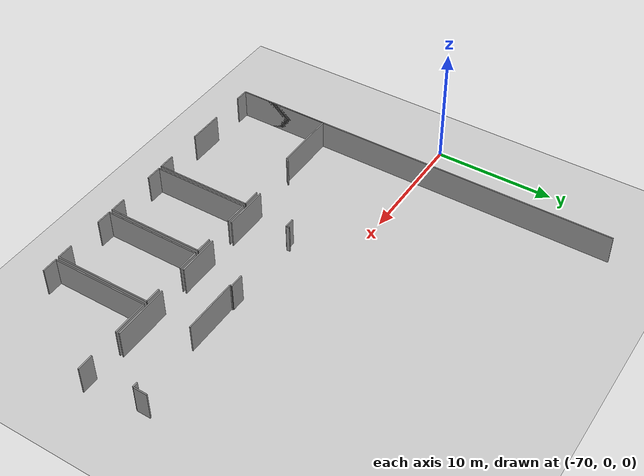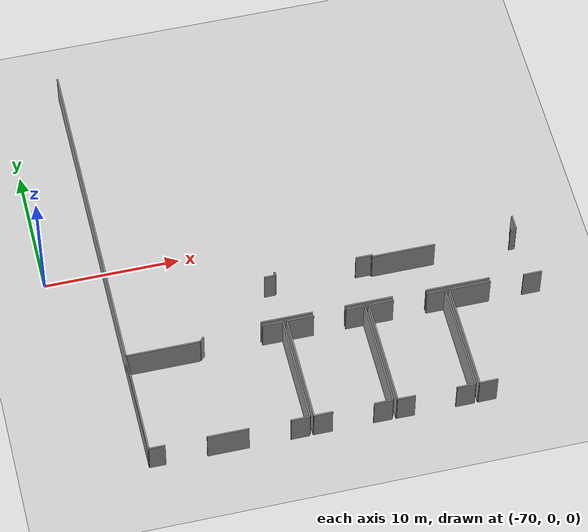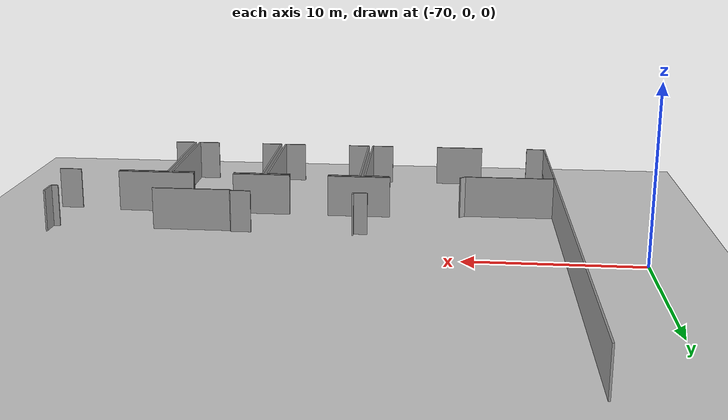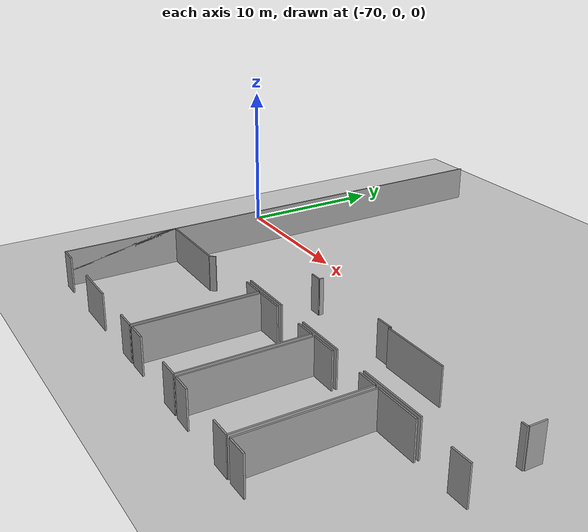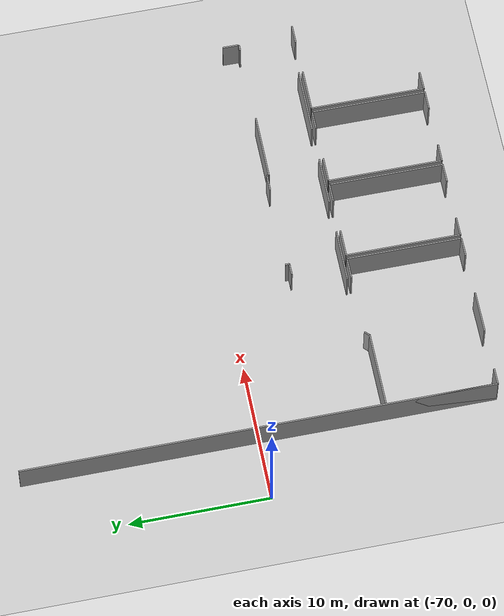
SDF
<sdf version="1.6">
 <world name="default">
  <model name="ground_plane">
   <static>1</static>
   <link name="link">
    <collision name="collision">
     <geometry><plane><normal>0 0 1</normal><size>100 100</size></plane></geometry>
     <surface><friction><ode><mu>100</mu><mu2>50</mu2></ode></friction></surface>
    </collision>
    <visual name="visual">
     <cast_shadows>0</cast_shadows>
     <geometry><plane><normal>0 0 1</normal><size>100 100</size></plane></geometry>
     <material>
      <script><uri>file://media/materials/scripts/gazebo.material</uri><name>Gazebo/Grey</name></script>
     </material>
    </visual>
   </link>
  </model>
  <model name="50041172">
   <static>1</static>
   <link name="Wall_0">
    <collision name="Wall_0_Collision">
     <geometry><box><size>7.88504652123 0.1 2.5</size></box></geometry>
     <pose>3.94252326061 0 1.25 0 0 0</pose>
    </collision>
    <visual name="Wall_0_Visual">
     <pose>3.94252326061 0 1.25 0 0 0</pose>
     <geometry><box><size>7.88504652123 0.1 2.5</size></box></geometry>
     <material>
      <script><uri>file://media/materials/scripts/gazebo.material</uri><name>Gazebo/Grey</name></script>
      <ambient>1 1 1 1</ambient>
     </material>
    </visual>
    <pose>0.0 -33.542027881 0 0 0 1.57079632679</pose>
   </link>
   <link name="Wall_1">
    <collision name="Wall_1_Collision">
     <geometry><box><size>5.38922231749 0.1 2.5</size></box></geometry>
     <pose>2.69461115874 0 1.25 0 0 0</pose>
    </collision>
    <visual name="Wall_1_Visual">
     <pose>2.69461115874 0 1.25 0 0 0</pose>
     <geometry><box><size>5.38922231749 0.1 2.5</size></box></geometry>
     <material>
      <script><uri>file://media/materials/scripts/gazebo.material</uri><name>Gazebo/Grey</name></script>
      <ambient>1 1 1 1</ambient>
     </material>
    </visual>
    <pose>0.0 -25.6569813598 0 0 0 0.0</pose>
   </link>
   <link name="Wall_2">
    <collision name="Wall_2_Collision">
     <geometry><box><size>0.439427206756 0.1 2.5</size></box></geometry>
     <pose>0.219713603378 0 1.25 0 0 0</pose>
    </collision>
    <visual name="Wall_2_Visual">
     <pose>0.219713603378 0 1.25 0 0 0</pose>
     <geometry><box><size>0.439427206756 0.1 2.5</size></box></geometry>
     <material>
      <script><uri>file://media/materials/scripts/gazebo.material</uri><name>Gazebo/Grey</name></script>
      <ambient>1 1 1 1</ambient>
     </material>
    </visual>
    <pose>5.38922231749 -25.6569813598 0 0 0 0.799297513546</pose>
   </link>
   <link name="Wall_3">
    <collision name="Wall_3_Collision">
     <geometry><box><size>1.51370232765 0.1 2.5</size></box></geometry>
     <pose>0.756851163825 0 1.25 0 0 0</pose>
    </collision>
    <visual name="Wall_3_Visual">
     <pose>0.756851163825 0 1.25 0 0 0</pose>
     <geometry><box><size>1.51370232765 0.1 2.5</size></box></geometry>
     <material>
      <script><uri>file://media/materials/scripts/gazebo.material</uri><name>Gazebo/Grey</name></script>
      <ambient>1 1 1 1</ambient>
     </material>
    </visual>
    <pose>10.0130195929 -25.3419707218 0 0 0 0.0</pose>
   </link>
   <link name="Wall_4">
    <collision name="Wall_4_Collision">
     <geometry><box><size>8.20247054714 0.1 2.5</size></box></geometry>
     <pose>4.10123527357 0 1.25 0 0 0</pose>
    </collision>
    <visual name="Wall_4_Visual">
     <pose>4.10123527357 0 1.25 0 0 0</pose>
     <geometry><box><size>8.20247054714 0.1 2.5</size></box></geometry>
     <material>
      <script><uri>file://media/materials/scripts/gazebo.material</uri><name>Gazebo/Grey</name></script>
      <ambient>1 1 1 1</ambient>
     </material>
    </visual>
    <pose>11.5267219205 -25.3419707218 0 0 0 -1.57079632679</pose>
   </link>
   <link name="Wall_5">
    <collision name="Wall_5_Collision">
     <geometry><box><size>1.37499603061 0.1 2.5</size></box></geometry>
     <pose>0.687498015306 0 1.25 0 0 0</pose>
    </collision>
    <visual name="Wall_5_Visual">
     <pose>0.687498015306 0 1.25 0 0 0</pose>
     <geometry><box><size>1.37499603061 0.1 2.5</size></box></geometry>
     <material>
      <script><uri>file://media/materials/scripts/gazebo.material</uri><name>Gazebo/Grey</name></script>
      <ambient>1 1 1 1</ambient>
     </material>
    </visual>
    <pose>11.5267219205 -33.5444412689 0 0 0 3.14159265359</pose>
   </link>
   <link name="Wall_6">
    <collision name="Wall_6_Collision">
     <geometry><box><size>3.01178114382 0.1 2.5</size></box></geometry>
     <pose>1.50589057191 0 1.25 0 0 0</pose>
    </collision>
    <visual name="Wall_6_Visual">
     <pose>1.50589057191 0 1.25 0 0 0</pose>
     <geometry><box><size>3.01178114382 0.1 2.5</size></box></geometry>
     <material>
      <script><uri>file://media/materials/scripts/gazebo.material</uri><name>Gazebo/Grey</name></script>
      <ambient>1 1 1 1</ambient>
     </material>
    </visual>
    <pose>7.15734654346 -33.5444412689 0 0 0 3.14159265359</pose>
   </link>
   <link name="Wall_7">
    <collision name="Wall_7_Collision">
     <geometry><box><size>1.16846332243 0.1 2.5</size></box></geometry>
     <pose>0.584231661216 0 1.25 0 0 0</pose>
    </collision>
    <visual name="Wall_7_Visual">
     <pose>0.584231661216 0 1.25 0 0 0</pose>
     <geometry><box><size>1.16846332243 0.1 2.5</size></box></geometry>
     <material>
      <script><uri>file://media/materials/scripts/gazebo.material</uri><name>Gazebo/Grey</name></script>
      <ambient>1 1 1 1</ambient>
     </material>
    </visual>
    <pose>1.16846083008 -33.5444412689 0 0 0 3.13952721463</pose>
   </link>
   <link name="Wall_8">
    <collision name="Wall_8_Collision">
     <geometry><box><size>8.19789781207 0.1 2.5</size></box></geometry>
     <pose>4.09894890604 0 1.25 0 0 0</pose>
    </collision>
    <visual name="Wall_8_Visual">
     <pose>4.09894890604 0 1.25 0 0 0</pose>
     <geometry><box><size>8.19789781207 0.1 2.5</size></box></geometry>
     <material>
      <script><uri>file://media/materials/scripts/gazebo.material</uri><name>Gazebo/Grey</name></script>
      <ambient>1 1 1 1</ambient>
     </material>
    </visual>
    <pose>11.8021021879 -33.5377091868 0 0 0 1.57079632679</pose>
   </link>
   <link name="Wall_9">
    <collision name="Wall_9_Collision">
     <geometry><box><size>1.98202661078 0.1 2.5</size></box></geometry>
     <pose>0.991013305389 0 1.25 0 0 0</pose>
    </collision>
    <visual name="Wall_9_Visual">
     <pose>0.991013305389 0 1.25 0 0 0</pose>
     <geometry><box><size>1.98202661078 0.1 2.5</size></box></geometry>
     <material>
      <script><uri>file://media/materials/scripts/gazebo.material</uri><name>Gazebo/Grey</name></script>
      <ambient>1 1 1 1</ambient>
     </material>
    </visual>
    <pose>11.8021021879 -25.3398113747 0 0 0 0.0</pose>
   </link>
   <link name="Wall_10">
    <collision name="Wall_10_Collision">
     <geometry><box><size>1.37842558191 0.1 2.5</size></box></geometry>
     <pose>0.689212790956 0 1.25 0 0 0</pose>
    </collision>
    <visual name="Wall_10_Visual">
     <pose>0.689212790956 0 1.25 0 0 0</pose>
     <geometry><box><size>1.37842558191 0.1 2.5</size></box></geometry>
     <material>
      <script><uri>file://media/materials/scripts/gazebo.material</uri><name>Gazebo/Grey</name></script>
      <ambient>1 1 1 1</ambient>
     </material>
    </visual>
    <pose>16.1533136452 -25.3398113747 0 0 0 0.0</pose>
   </link>
   <link name="Wall_11">
    <collision name="Wall_11_Collision">
     <geometry><box><size>8.19637356705 0.1 2.5</size></box></geometry>
     <pose>4.09818678353 0 1.25 0 0 0</pose>
    </collision>
    <visual name="Wall_11_Visual">
     <pose>4.09818678353 0 1.25 0 0 0</pose>
     <geometry><box><size>8.19637356705 0.1 2.5</size></box></geometry>
     <material>
      <script><uri>file://media/materials/scripts/gazebo.material</uri><name>Gazebo/Grey</name></script>
      <ambient>1 1 1 1</ambient>
     </material>
    </visual>
    <pose>17.5317392271 -25.3398113747 0 0 0 -1.57079632679</pose>
   </link>
   <link name="Wall_12">
    <collision name="Wall_12_Collision">
     <geometry><box><size>1.37245562224 0.1 2.5</size></box></geometry>
     <pose>0.686227811121 0 1.25 0 0 0</pose>
    </collision>
    <visual name="Wall_12_Visual">
     <pose>0.686227811121 0 1.25 0 0 0</pose>
     <geometry><box><size>1.37245562224 0.1 2.5</size></box></geometry>
     <material>
      <script><uri>file://media/materials/scripts/gazebo.material</uri><name>Gazebo/Grey</name></script>
      <ambient>1 1 1 1</ambient>
     </material>
    </visual>
    <pose>17.5317392271 -33.5361849417 0 0 0 3.14159265359</pose>
   </link>
   <link name="Wall_13">
    <collision name="Wall_13_Collision">
     <geometry><box><size>1.3633110042 0.1 2.5</size></box></geometry>
     <pose>0.681655502098 0 1.25 0 0 0</pose>
    </collision>
    <visual name="Wall_13_Visual">
     <pose>0.681655502098 0 1.25 0 0 0</pose>
     <geometry><box><size>1.3633110042 0.1 2.5</size></box></geometry>
     <material>
      <script><uri>file://media/materials/scripts/gazebo.material</uri><name>Gazebo/Grey</name></script>
      <ambient>1 1 1 1</ambient>
     </material>
    </visual>
    <pose>13.16541234 -33.5361849417 0 0 0 -3.14047460691</pose>
   </link>
   <link name="Wall_14">
    <collision name="Wall_14_Collision">
     <geometry><box><size>8.20755136388 0.1 2.5</size></box></geometry>
     <pose>4.10377568194 0 1.25 0 0 0</pose>
    </collision>
    <visual name="Wall_14_Visual">
     <pose>4.10377568194 0 1.25 0 0 0</pose>
     <geometry><box><size>8.20755136388 0.1 2.5</size></box></geometry>
     <material>
      <script><uri>file://media/materials/scripts/gazebo.material</uri><name>Gazebo/Grey</name></script>
      <ambient>1 1 1 1</ambient>
     </material>
    </visual>
    <pose>17.8353180274 -33.5429170239 0 0 0 1.57079632679</pose>
   </link>
   <link name="Wall_15">
    <collision name="Wall_15_Collision">
     <geometry><box><size>1.82845892477 0.1 2.5</size></box></geometry>
     <pose>0.914229462386 0 1.25 0 0 0</pose>
    </collision>
    <visual name="Wall_15_Visual">
     <pose>0.914229462386 0 1.25 0 0 0</pose>
     <geometry><box><size>1.82845892477 0.1 2.5</size></box></geometry>
     <material>
      <script><uri>file://media/materials/scripts/gazebo.material</uri><name>Gazebo/Grey</name></script>
      <ambient>1 1 1 1</ambient>
     </material>
    </visual>
    <pose>17.8353180274 -25.33536566 0 0 0 0.0</pose>
   </link>
   <link name="Wall_16">
    <collision name="Wall_16_Collision">
     <geometry><box><size>1.36851798927 0.1 2.5</size></box></geometry>
     <pose>0.684258994633 0 1.25 0 0 0</pose>
    </collision>
    <visual name="Wall_16_Visual">
     <pose>0.684258994633 0 1.25 0 0 0</pose>
     <geometry><box><size>1.36851798927 0.1 2.5</size></box></geometry>
     <material>
      <script><uri>file://media/materials/scripts/gazebo.material</uri><name>Gazebo/Grey</name></script>
      <ambient>1 1 1 1</ambient>
     </material>
    </visual>
    <pose>22.1465180528 -25.33536566 0 0 0 0.0</pose>
   </link>
   <link name="Wall_17">
    <collision name="Wall_17_Collision">
     <geometry><box><size>8.22571528373 0.1 2.5</size></box></geometry>
     <pose>4.11285764187 0 1.25 0 0 0</pose>
    </collision>
    <visual name="Wall_17_Visual">
     <pose>4.11285764187 0 1.25 0 0 0</pose>
     <geometry><box><size>8.22571528373 0.1 2.5</size></box></geometry>
     <material>
      <script><uri>file://media/materials/scripts/gazebo.material</uri><name>Gazebo/Grey</name></script>
      <ambient>1 1 1 1</ambient>
     </material>
    </visual>
    <pose>23.515036042 -25.33536566 0 0 0 -1.57079632679</pose>
   </link>
   <link name="Wall_18">
    <collision name="Wall_18_Collision">
     <geometry><box><size>1.35149725318 0.1 2.5</size></box></geometry>
     <pose>0.675748626592 0 1.25 0 0 0</pose>
    </collision>
    <visual name="Wall_18_Visual">
     <pose>0.675748626592 0 1.25 0 0 0</pose>
     <geometry><box><size>1.35149725318 0.1 2.5</size></box></geometry>
     <material>
      <script><uri>file://media/materials/scripts/gazebo.material</uri><name>Gazebo/Grey</name></script>
      <ambient>1 1 1 1</ambient>
     </material>
    </visual>
    <pose>23.515036042 -33.5610809438 0 0 0 3.14159265359</pose>
   </link>
   <link name="Wall_19">
    <collision name="Wall_19_Collision">
     <geometry><box><size>1.31440578116 0.1 2.5</size></box></geometry>
     <pose>0.657202890581 0 1.25 0 0 0</pose>
    </collision>
    <visual name="Wall_19_Visual">
     <pose>0.657202890581 0 1.25 0 0 0</pose>
     <geometry><box><size>1.31440578116 0.1 2.5</size></box></geometry>
     <material>
      <script><uri>file://media/materials/scripts/gazebo.material</uri><name>Gazebo/Grey</name></script>
      <ambient>1 1 1 1</ambient>
     </material>
    </visual>
    <pose>19.1495982979 -33.5610809438 0 0 0 3.12777310237</pose>
   </link>
   <link name="Wall_20">
    <collision name="Wall_20_Collision">
     <geometry><box><size>8.21415642565 0.1 2.5</size></box></geometry>
     <pose>4.10707821282 0 1.25 0 0 0</pose>
    </collision>
    <visual name="Wall_20_Visual">
     <pose>4.10707821282 0 1.25 0 0 0</pose>
     <geometry><box><size>8.21415642565 0.1 2.5</size></box></geometry>
     <material>
      <script><uri>file://media/materials/scripts/gazebo.material</uri><name>Gazebo/Grey</name></script>
      <ambient>1 1 1 1</ambient>
     </material>
    </visual>
    <pose>23.8111206376 -33.5537137595 0 0 0 1.57079632679</pose>
   </link>
   <link name="Wall_21">
    <collision name="Wall_21_Collision">
     <geometry><box><size>3.0657648217 0.1 2.5</size></box></geometry>
     <pose>1.53288241085 0 1.25 0 0 0</pose>
    </collision>
    <visual name="Wall_21_Visual">
     <pose>1.53288241085 0 1.25 0 0 0</pose>
     <geometry><box><size>3.0657648217 0.1 2.5</size></box></geometry>
     <material>
      <script><uri>file://media/materials/scripts/gazebo.material</uri><name>Gazebo/Grey</name></script>
      <ambient>1 1 1 1</ambient>
     </material>
    </visual>
    <pose>23.8111206376 -25.3395573338 0 0 0 0.0</pose>
   </link>
   <link name="Wall_22">
    <collision name="Wall_22_Collision">
     <geometry><box><size>1.3625480296 0.1 2.5</size></box></geometry>
     <pose>0.681274014798 0 1.25 0 0 0</pose>
    </collision>
    <visual name="Wall_22_Visual">
     <pose>0.681274014798 0 1.25 0 0 0</pose>
     <geometry><box><size>1.3625480296 0.1 2.5</size></box></geometry>
     <material>
      <script><uri>file://media/materials/scripts/gazebo.material</uri><name>Gazebo/Grey</name></script>
      <ambient>1 1 1 1</ambient>
     </material>
    </visual>
    <pose>29.3560699883 -25.3395573338 0 0 0 0.0</pose>
   </link>
   <link name="Wall_25">
    <collision name="Wall_25_Collision">
     <geometry><box><size>1.34625753171 0.1 2.5</size></box></geometry>
     <pose>0.673128765856 0 1.25 0 0 0</pose>
    </collision>
    <visual name="Wall_25_Visual">
     <pose>0.673128765856 0 1.25 0 0 0</pose>
     <geometry><box><size>1.34625753171 0.1 2.5</size></box></geometry>
     <material>
      <script><uri>file://media/materials/scripts/gazebo.material</uri><name>Gazebo/Grey</name></script>
      <ambient>1 1 1 1</ambient>
     </material>
    </visual>
    <pose>25.1572830332 -33.5377091868 0 0 0 -3.12970417804</pose>
   </link>
   <link name="Wall_111">
    <collision name="Wall_111_Collision">
     <geometry><box><size>1.13793943495 0.1 2.5</size></box></geometry>
     <pose>0.568969717477 0 1.25 0 0 0</pose>
    </collision>
    <visual name="Wall_111_Visual">
     <pose>0.568969717477 0 1.25 0 0 0</pose>
     <geometry><box><size>1.13793943495 0.1 2.5</size></box></geometry>
     <material>
      <script><uri>file://media/materials/scripts/gazebo.material</uri><name>Gazebo/Grey</name></script>
      <ambient>1 1 1 1</ambient>
     </material>
    </visual>
    <pose>29.9385856276 -21.2453081833 0 0 0 1.55818257295</pose>
   </link>
   <link name="Wall_171">
    <collision name="Wall_171_Collision">
     <geometry><box><size>0.83947794608 0.1 2.5</size></box></geometry>
     <pose>0.41973897304 0 1.25 0 0 0</pose>
    </collision>
    <visual name="Wall_171_Visual">
     <pose>0.41973897304 0 1.25 0 0 0</pose>
     <geometry><box><size>0.83947794608 0.1 2.5</size></box></geometry>
     <material>
      <script><uri>file://media/materials/scripts/gazebo.material</uri><name>Gazebo/Grey</name></script>
      <ambient>1 1 1 1</ambient>
     </material>
    </visual>
    <pose>11.0799911086 -21.3051348004 0 0 0 0.0</pose>
   </link>
   <link name="Wall_172">
    <collision name="Wall_172_Collision">
     <geometry><box><size>0.291003778857 0.1 2.5</size></box></geometry>
     <pose>0.145501889429 0 1.25 0 0 0</pose>
    </collision>
    <visual name="Wall_172_Visual">
     <pose>0.145501889429 0 1.25 0 0 0</pose>
     <geometry><box><size>0.291003778857 0.1 2.5</size></box></geometry>
     <material>
      <script><uri>file://media/materials/scripts/gazebo.material</uri><name>Gazebo/Grey</name></script>
      <ambient>1 1 1 1</ambient>
     </material>
    </visual>
    <pose>11.9194690547 -21.3051348004 0 0 0 1.57079632679</pose>
   </link>
   <link name="Wall_174">
    <collision name="Wall_174_Collision">
     <geometry><box><size>1.19513511797 0.1 2.5</size></box></geometry>
     <pose>0.597567558985 0 1.25 0 0 0</pose>
    </collision>
    <visual name="Wall_174_Visual">
     <pose>0.597567558985 0 1.25 0 0 0</pose>
     <geometry><box><size>1.19513511797 0.1 2.5</size></box></geometry>
     <material>
      <script><uri>file://media/materials/scripts/gazebo.material</uri><name>Gazebo/Grey</name></script>
      <ambient>1 1 1 1</ambient>
     </material>
    </visual>
    <pose>17.9260106062 -21.1534724207 0 0 0 0.0</pose>
   </link>
   <link name="Wall_175">
    <collision name="Wall_175_Collision">
     <geometry><box><size>0.143024991267 0.1 2.5</size></box></geometry>
     <pose>0.0715124956337 0 1.25 0 0 0</pose>
    </collision>
    <visual name="Wall_175_Visual">
     <pose>0.0715124956337 0 1.25 0 0 0</pose>
     <geometry><box><size>0.143024991267 0.1 2.5</size></box></geometry>
     <material>
      <script><uri>file://media/materials/scripts/gazebo.material</uri><name>Gazebo/Grey</name></script>
      <ambient>1 1 1 1</ambient>
     </material>
    </visual>
    <pose>19.1211457242 -21.1534724207 0 0 0 -1.57079632679</pose>
   </link>
   <link name="Wall_176">
    <collision name="Wall_176_Collision">
     <geometry><box><size>4.68565621924 0.1 2.5</size></box></geometry>
     <pose>2.34282810962 0 1.25 0 0 0</pose>
    </collision>
    <visual name="Wall_176_Visual">
     <pose>2.34282810962 0 1.25 0 0 0</pose>
     <geometry><box><size>4.68565621924 0.1 2.5</size></box></geometry>
     <material>
      <script><uri>file://media/materials/scripts/gazebo.material</uri><name>Gazebo/Grey</name></script>
      <ambient>1 1 1 1</ambient>
     </material>
    </visual>
    <pose>19.1211457242 -21.296497412 0 0 0 0.0</pose>
   </link>
   <link name="Wall_177">
    <collision name="Wall_177_Collision">
     <geometry><box><size>0.422215871201 0.1 2.5</size></box></geometry>
     <pose>0.211107935601 0 1.25 0 0 0</pose>
    </collision>
    <visual name="Wall_177_Visual">
     <pose>0.211107935601 0 1.25 0 0 0</pose>
     <geometry><box><size>0.422215871201 0.1 2.5</size></box></geometry>
     <material>
      <script><uri>file://media/materials/scripts/gazebo.material</uri><name>Gazebo/Grey</name></script>
      <ambient>1 1 1 1</ambient>
     </material>
    </visual>
    <pose>29.5102727763 -21.296497412 0 0 0 0.0</pose>
   </link>
   <link name="Wall_203">
    <collision name="Wall_203_Collision">
     <geometry><box><size>4.73760757042 0.1 2.5</size></box></geometry>
     <pose>2.36880378521 0 1.25 0 0 0</pose>
    </collision>
    <visual name="Wall_203_Visual">
     <pose>2.36880378521 0 1.25 0 0 0</pose>
     <geometry><box><size>4.73760757042 0.1 2.5</size></box></geometry>
     <material>
      <script><uri>file://media/materials/scripts/gazebo.material</uri><name>Gazebo/Grey</name></script>
      <ambient>1 1 1 1</ambient>
     </material>
    </visual>
    <pose>26.8728208059 -25.0504588613 0 0 0 3.14159265359</pose>
   </link>
   <link name="Wall_204">
    <collision name="Wall_204_Collision">
     <geometry><box><size>3.53231081896 0.1 2.5</size></box></geometry>
     <pose>1.76615540948 0 1.25 0 0 0</pose>
    </collision>
    <visual name="Wall_204_Visual">
     <pose>1.76615540948 0 1.25 0 0 0</pose>
     <geometry><box><size>3.53231081896 0.1 2.5</size></box></geometry>
     <material>
      <script><uri>file://media/materials/scripts/gazebo.material</uri><name>Gazebo/Grey</name></script>
      <ambient>1 1 1 1</ambient>
     </material>
    </visual>
    <pose>19.6683496872 -25.0504588613 0 0 0 3.14159265359</pose>
   </link>
   <link name="Wall_205">
    <collision name="Wall_205_Collision">
     <geometry><box><size>3.81531231145 0.1 2.5</size></box></geometry>
     <pose>1.90765615573 0 1.25 0 0 0</pose>
    </collision>
    <visual name="Wall_205_Visual">
     <pose>1.90765615573 0 1.25 0 0 0</pose>
     <geometry><box><size>3.81531231145 0.1 2.5</size></box></geometry>
     <material>
      <script><uri>file://media/materials/scripts/gazebo.material</uri><name>Gazebo/Grey</name></script>
      <ambient>1 1 1 1</ambient>
     </material>
    </visual>
    <pose>13.7710456956 -25.0504588613 0 0 0 3.14159265359</pose>
   </link>
   <link name="Wall_348">
    <collision name="Wall_348_Collision">
     <geometry><box><size>33.5659077197 0.1 2.5</size></box></geometry>
     <pose>16.7829538598 0 1.25 0 0 0</pose>
    </collision>
    <visual name="Wall_348_Visual">
     <pose>16.7829538598 0 1.25 0 0 0</pose>
     <geometry><box><size>33.5659077197 0.1 2.5</size></box></geometry>
     <material>
      <script><uri>file://media/materials/scripts/gazebo.material</uri><name>Gazebo/Grey</name></script>
      <ambient>1 1 1 1</ambient>
     </material>
    </visual>
    <pose>0.0 -33.5659077197 0 0 0 1.57079632679</pose>
   </link>
   <pose>-65.7 16.7659077197 0 0 0 0</pose>
  </model>
 </world>
</sdf>
